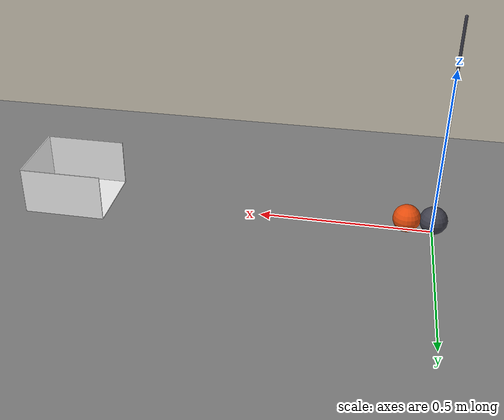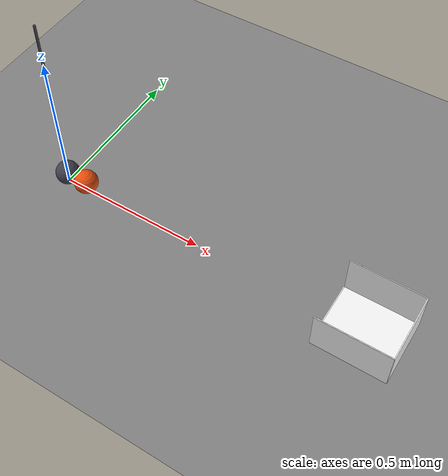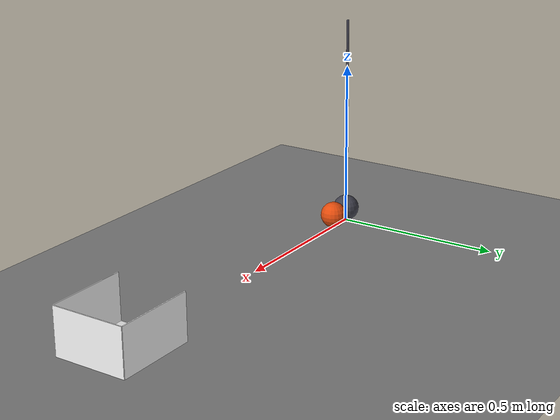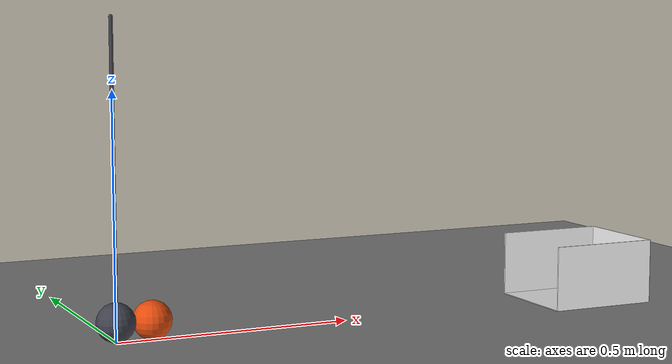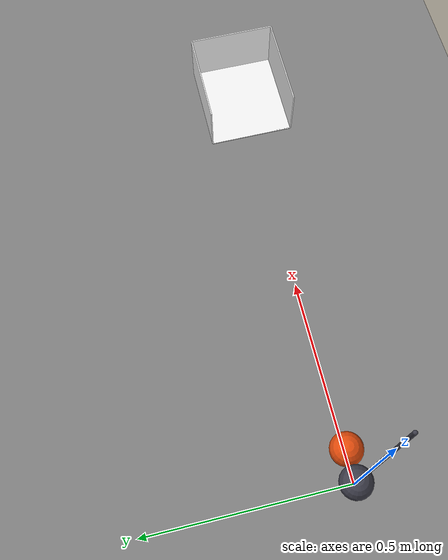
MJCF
<mujoco model="pendulum_rolls_a_ball_into_a_cup">
  <compiler angle="radian"/>
  <option timestep="0.002"/>
  <worldbody>
    <geom name="floor" type="plane" size="4 4 0.1" friction="0.65 0.003 0.0003"/>
    <body name="ball" pos="0.075 0 0.04">
      <freejoint/>
      <geom name="ball" type="sphere" pos="0 0 0" size="0.04" mass="0.2" condim="6" friction="0.65 0.003 0.0003" solref="0.01 1" rgba="0.9 0.3 0.05 1"/>
    </body>
    <body name="pendulum" pos="0 0 0.641">
      <joint name="pendulum_hinge" type="hinge" pos="0 0 0" axis="0 1 0" limited="true" range="-0.20944 0.610865" damping="0.005"/>
      <geom name="pendulum" type="sphere" pos="0 0 -0.6" size="0.04" mass="0.2" friction="0.5 0.001 0.0001" solref="0.01 1" rgba="0.25 0.25 0.3 1"/>
      <geom name="pendulum rod" type="capsule" size="0.004" fromto="0 0 0 0 0 -0.56" mass="0.02" rgba="0.25 0.25 0.3 1"/>
    </body>
    <body name="cup">
      <geom name="cup_base" type="box" pos="1.075 0 0.0005" size="0.12 0.11 0.0005" friction="0.9 0.01 0.004" solref="0.01 1" rgba="0.95 0.95 0.95 1"/>
      <geom name="cup_near_wall" type="box" pos="0.955 0 0.0005" size="0.0015 0.11 0.0005" friction="0.9 0.01 0.004" solref="0.01 1" rgba="0.95 0.95 0.95 1"/>
      <geom name="cup_far_wall" type="box" pos="1.195 0 0.07" size="0.0015 0.11 0.07" friction="0.9 0.01 0.004" solref="0.01 1" rgba="0.95 0.95 0.95 1"/>
      <geom name="cup_left_wall" type="box" pos="1.075 0.11 0.07" size="0.12 0.0015 0.07" friction="0.9 0.01 0.004" solref="0.01 1" rgba="0.95 0.95 0.95 1"/>
      <geom name="cup_right_wall" type="box" pos="1.075 -0.11 0.07" size="0.12 0.0015 0.07" friction="0.9 0.01 0.004" solref="0.01 1" rgba="0.95 0.95 0.95 1"/>
    </body>
  </worldbody>
  <keyframe>
    <key name="start" qpos="0.075 0 0.04 1 0 0 0 0.523599" qvel="0 0 0 0 0 0 0"/>
  </keyframe>
</mujoco>
